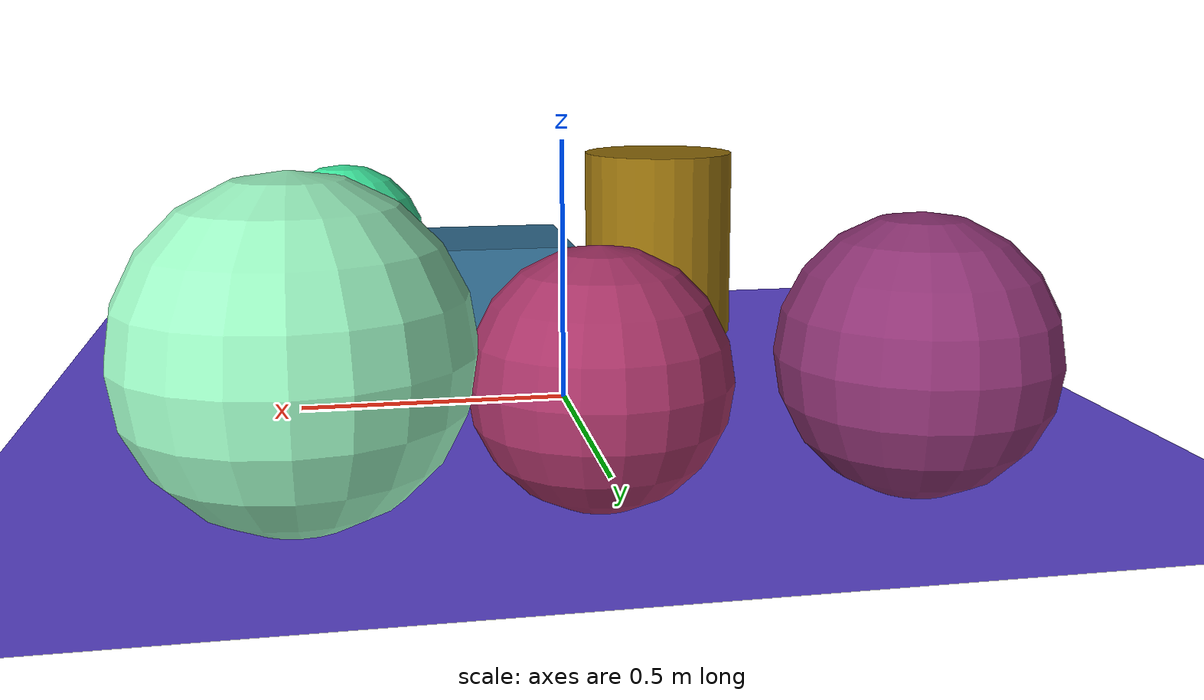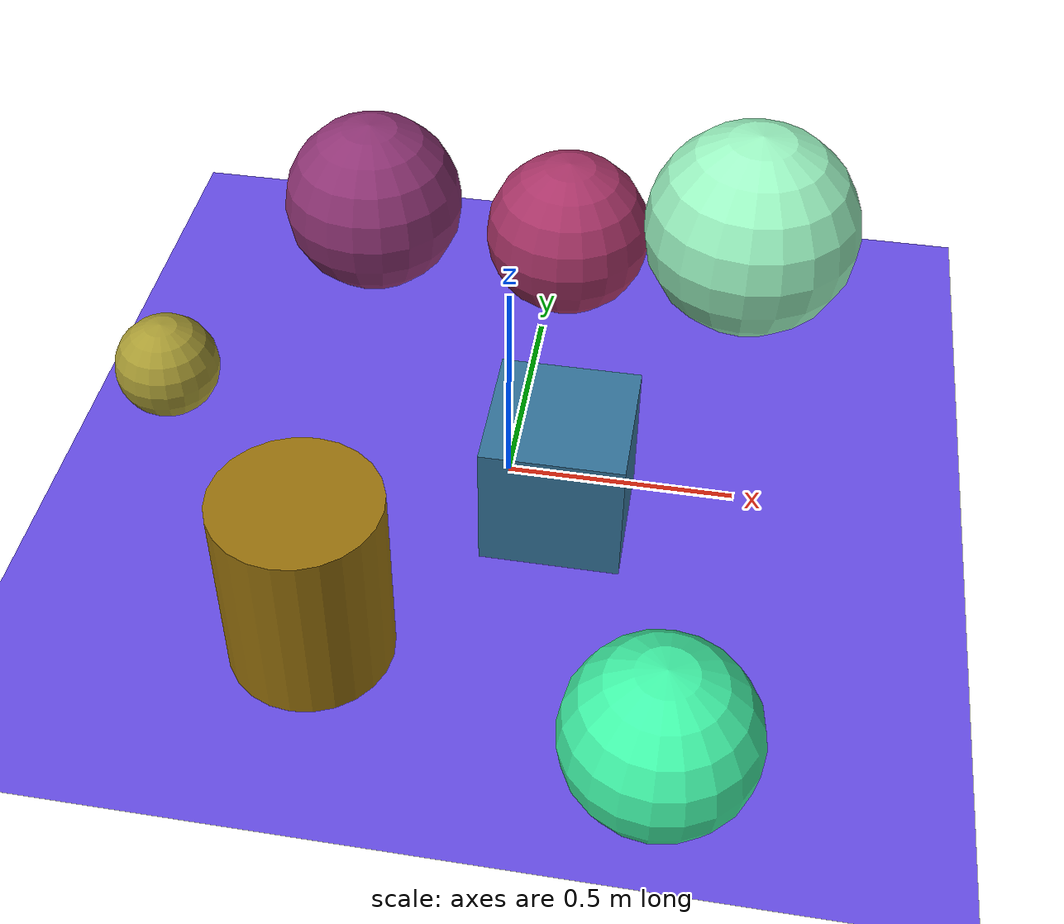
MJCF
<mujoco>
   <asset>
<texture type="skybox" builtin="gradient" rgb1="0.9 0.1 0.5" rgb2="0.3 0.1 0.6" width="256" height="256"/>
<texture name="gradient_0" builtin="gradient" rgb1="0.5 1.0 0.4" rgb2="0.0 0.9 0.9" width="200" height="200"/>
<texture name="gradient_1" builtin="gradient" rgb1="0.5 0.9 0.1" rgb2="0.7 0.0 0.0" width="200" height="200"/>
<texture name="checker_2" builtin="checker" type="2d" rgb1="0.4 0.8 0.8" rgb2="0.0 0.1 0.4" width="200" height="200"/>
<texture name="gradient_3" builtin="gradient" rgb1="0.9 0.9 0.2" rgb2="0.4 0.3 0.2" width="200" height="200"/>
<texture name="checker_4" builtin="checker" type="2d" rgb1="0.3 1.0 0.8" rgb2="0.9 0.9 0.7" width="200" height="200"/>
<texture name="checker_5" builtin="checker" type="2d" rgb1="0.9 0.2 0.5" rgb2="0.2 0.2 0.4" width="200" height="200"/>
<texture name="gradient_6" builtin="gradient" rgb1="0.4 0.1 0.2" rgb2="0.9 0.3 0.6" width="200" height="200"/><material name="gradient_0_mat" reflectance="0" texture="gradient_0" texuniform="true"/>
<material name="gradient_1_mat" reflectance="0" texture="gradient_1" texuniform="true"/>
<material name="checker_2_mat" reflectance="0" texrepeat="5 5" texture="checker_2" texuniform="false" />
<material name="gradient_3_mat" reflectance="0" texture="gradient_3" texuniform="true"/>
<material name="checker_4_mat" reflectance="0" texrepeat="6 6" texture="checker_4" texuniform="false" />
<material name="checker_5_mat" reflectance="0" texrepeat="7 7" texture="checker_5" texuniform="false" />
<material name="gradient_6_mat" reflectance="0" texture="gradient_6" texuniform="true"/>
   </asset>

   <worldbody>
      <light diffuse=".9 .9 .9" pos="0 0 3" dir="0 0 -1"/>
     <geom type="plane" size="1 1 0.1" rgba="0.4 0.3 0.9 1"/>
<geom type="sphere" pos="0.41 -0.8 0.19" size="0.19 0.19 0.19" material="gradient_0_mat" />
<geom type="cylinder" pos="-0.31 -0.56 0.21" size="0.17 0.21 0.21" material="gradient_1_mat" />
<geom type="box" pos="0.13 -0.12 0.15" size="0.15 0.15 0.15" material="checker_2_mat" />
<geom type="sphere" pos="-0.81 0.08 0.12" size="0.12 0.12 0.12" material="gradient_3_mat" />
<geom type="sphere" pos="0.48 0.64 0.26" size="0.26 0.26 0.26" material="checker_4_mat" />
<geom type="sphere" pos="-0.45 0.65 0.22" size="0.22 0.22 0.22" material="checker_5_mat" />
<geom type="sphere" pos="0.04 0.63 0.2" size="0.2 0.2 0.2" material="gradient_6_mat" /><camera euler="60 0 180" fovy="60" name="camera_a" pos="0 -1.5 1"></camera>   </worldbody>
</mujoco>
